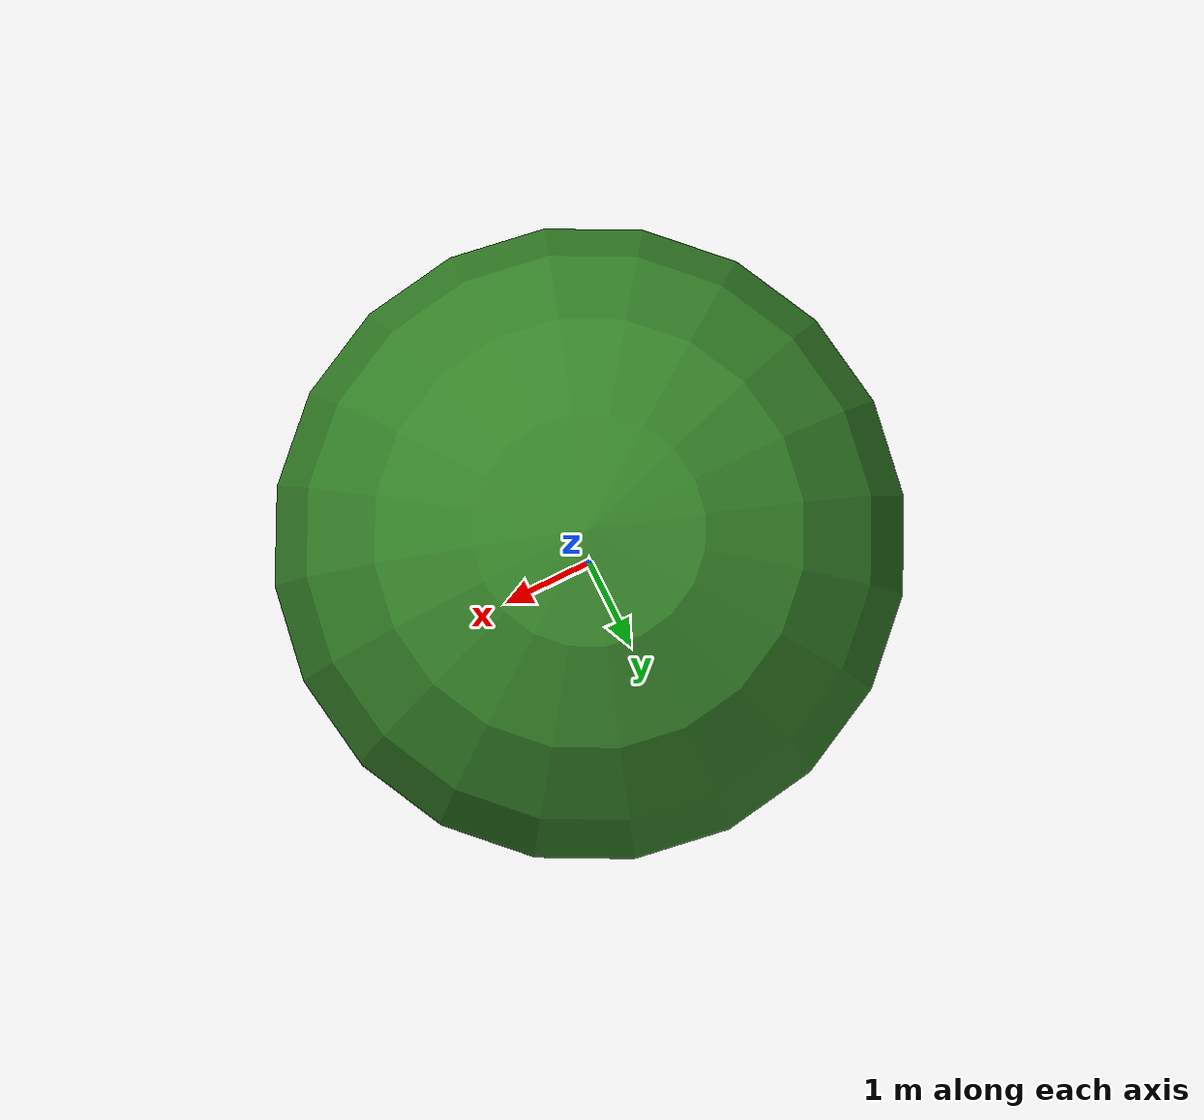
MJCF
<mujoco>
  <!-- Tree asset - trunk and foliage -->
  <asset>
    <material name="tree_bark" rgba="0.4 0.25 0.1 1"/>
    <material name="tree_leaves" rgba="0.2 0.5 0.15 1"/>
  </asset>

  <worldbody>
    <body name="tree">
      <!-- Trunk -->
      <geom name="trunk" type="cylinder" size="0.3 2" pos="0 0 2" material="tree_bark"/>
      <!-- Foliage -->
      <geom name="foliage" type="sphere" size="2.5" pos="0 0 5" material="tree_leaves"/>
    </body>
  </worldbody>
</mujoco>
